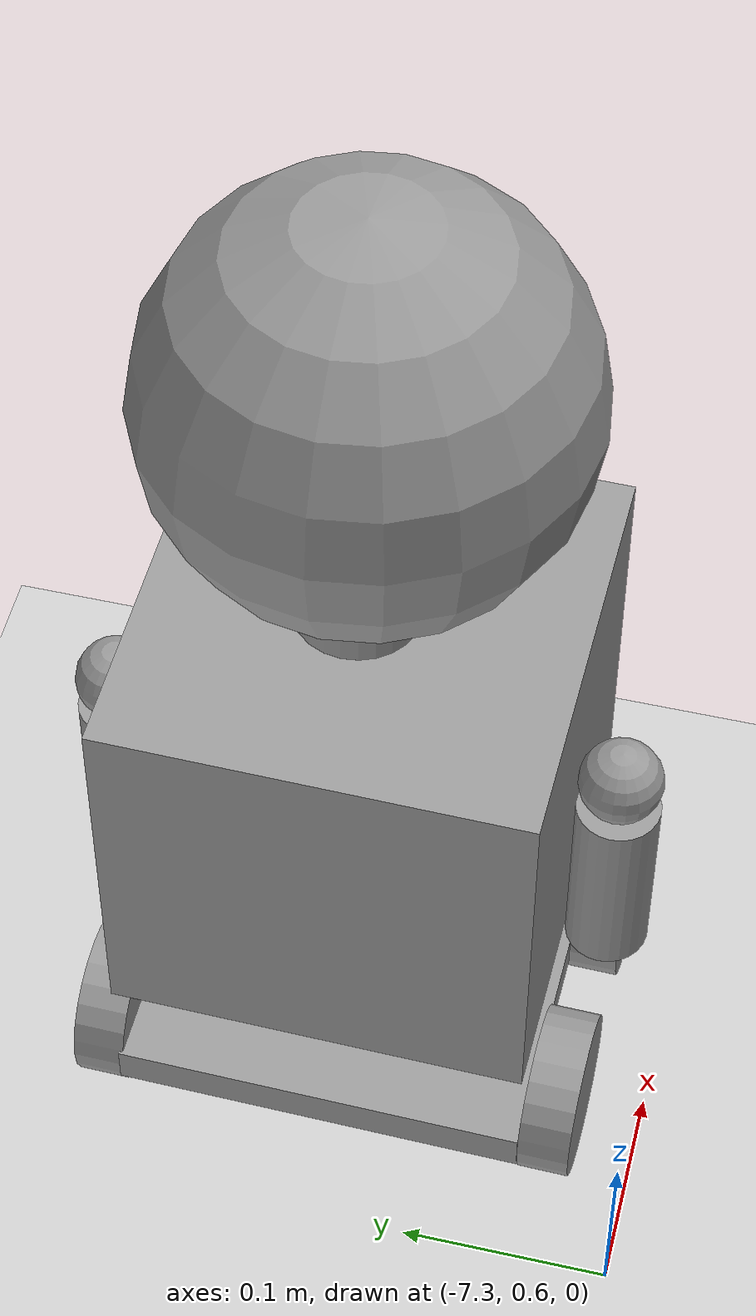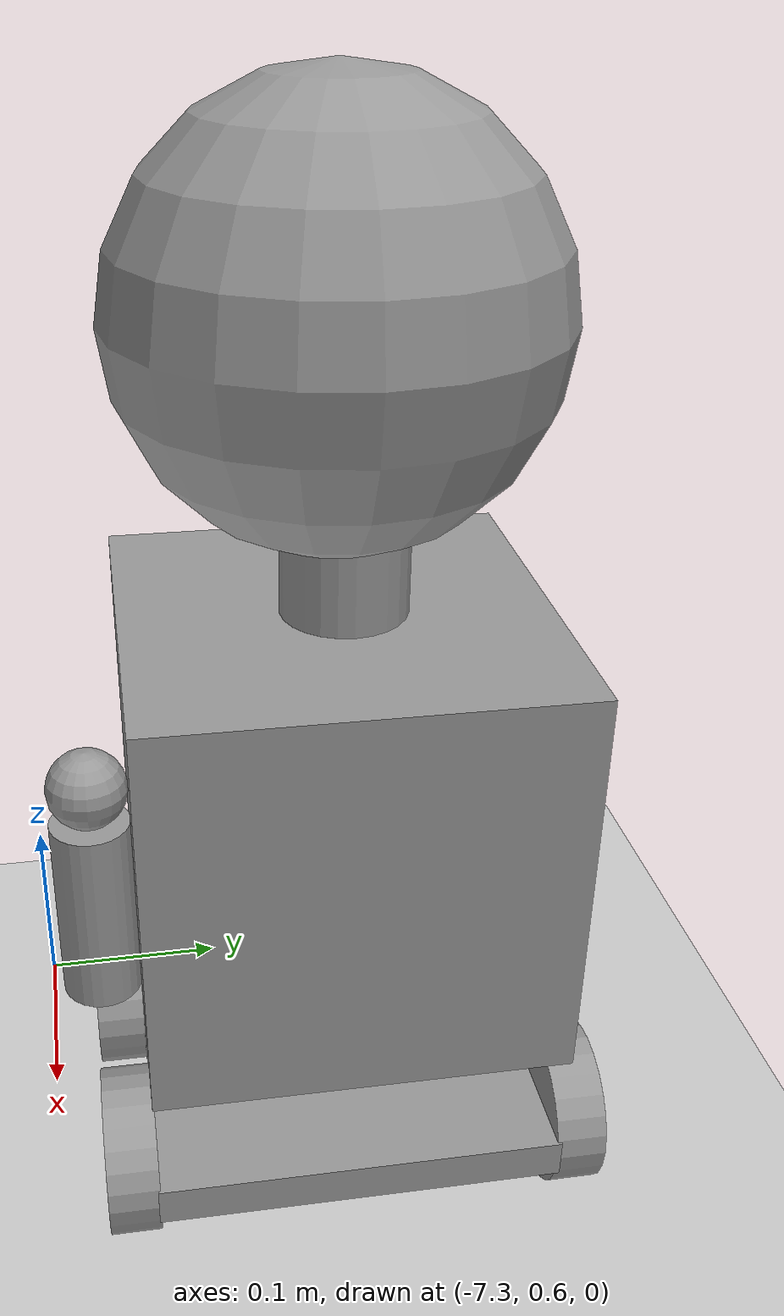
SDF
<sdf version="1.6">
 <world name="default">
  <model name="ground_plane">
   <static>1</static>
   <link name="link">
    <collision name="collision">
     <geometry><plane><normal>0 0 1</normal><size>100 100</size></plane></geometry>
     <surface><friction><ode><mu>100</mu><mu2>50</mu2></ode></friction></surface>
    </collision>
    <visual name="visual">
     <cast_shadows>0</cast_shadows>
     <geometry><plane><normal>0 0 1</normal><size>100 100</size></plane></geometry>
     <material>
      <script><uri>file://media/materials/scripts/gazebo.material</uri><name>Gazebo/Grey</name></script>
     </material>
    </visual>
   </link>
  </model>
  <model name="RoboX_0">
   <link name="link_0">
    <pose>2 1.99948 0.422775 0 -0 0</pose>
    <inertial>
     <mass>1</mass>
     <inertia>
      <ixx>0.166667</ixx>
      <ixy>0</ixy>
      <ixz>0</ixz>
      <iyy>0.166667</iyy>
      <iyz>0</iyz>
      <izz>0.166667</izz>
     </inertia>
    </inertial>
    <visual name="visual">
     <geometry><box><size>0.2 0.2 0.02</size></box></geometry>
     <material>
      <lighting>1</lighting>
      <script><uri>file://media/materials/scripts/gazebo.material</uri><name>Gazebo/Grey</name></script>
      <shader type="pixel"><normal_map>__default__</normal_map></shader>
      <ambient>0.3 0.3 0.3 1</ambient>
      <diffuse>0.7 0.7 0.7 1</diffuse>
      <specular>0.01 0.01 0.01 1</specular>
      <emissive>0 0 0 1</emissive>
     </material>
    </visual>
    <collision name="collision">
     <geometry><box><size>0.2 0.2 0.02</size></box></geometry>
     <surface>
      <friction>
       <ode><mu>1</mu><mu2>1</mu2><fdir1>0 0 0</fdir1><slip1>0</slip1><slip2>0</slip2></ode>
       <torsional>
        <coefficient>1</coefficient>
        <patch_radius>0</patch_radius>
        <surface_radius>0</surface_radius>
        <use_patch_radius>1</use_patch_radius>
        <ode><slip>0</slip></ode>
       </torsional>
      </friction>
      <bounce><restitution_coefficient>0</restitution_coefficient><threshold>1e+06</threshold></bounce>
      <contact>
       <collide_without_contact>0</collide_without_contact>
       <collide_without_contact_bitmask>1</collide_without_contact_bitmask>
       <collide_bitmask>1</collide_bitmask>
       <ode>
        <soft_cfm>0</soft_cfm>
        <soft_erp>0.2</soft_erp>
        <kp>1e+13</kp>
        <kd>1</kd>
        <max_vel>0.01</max_vel>
        <min_depth>0</min_depth>
       </ode>
       <bullet>
        <split_impulse>1</split_impulse>
        <split_impulse_penetration_threshold>-0.01</split_impulse_penetration_threshold>
        <soft_cfm>0</soft_cfm>
        <soft_erp>0.2</soft_erp>
        <kp>1e+13</kp>
        <kd>1</kd>
       </bullet>
      </contact>
     </surface>
    </collision>
   </link>
   <link name="link_1">
    <pose>1.94 1.88697 0.422775 1.5707 -0 0</pose>
    <inertial>
     <mass>1</mass>
     <inertia><ixx>0.145833</ixx><ixy>0</ixy><ixz>0</ixz><iyy>0.145833</iyy><iyz>0</iyz><izz>0.125</izz></inertia>
    </inertial>
    <visual name="visual">
     <geometry><cylinder><radius>0.04</radius><length>0.025</length></cylinder></geometry>
     <material>
      <lighting>1</lighting>
      <script><uri>file://media/materials/scripts/gazebo.material</uri><name>Gazebo/Grey</name></script>
      <shader type="pixel"><normal_map>__default__</normal_map></shader>
      <ambient>0.3 0.3 0.3 1</ambient>
      <diffuse>0.7 0.7 0.7 1</diffuse>
      <specular>0.01 0.01 0.01 1</specular>
      <emissive>0 0 0 1</emissive>
     </material>
    </visual>
    <collision name="collision">
     <geometry><cylinder><radius>0.04</radius><length>0.025</length></cylinder></geometry>
     <surface>
      <friction>
       <ode><mu>1</mu><mu2>1</mu2><fdir1>0 0 0</fdir1><slip1>0</slip1><slip2>0</slip2></ode>
       <torsional>
        <coefficient>1</coefficient>
        <patch_radius>0</patch_radius>
        <surface_radius>0</surface_radius>
        <use_patch_radius>1</use_patch_radius>
        <ode><slip>0</slip></ode>
       </torsional>
      </friction>
      <bounce><restitution_coefficient>0</restitution_coefficient><threshold>1e+06</threshold></bounce>
      <contact>
       <collide_without_contact>0</collide_without_contact>
       <collide_without_contact_bitmask>1</collide_without_contact_bitmask>
       <collide_bitmask>1</collide_bitmask>
       <ode>
        <soft_cfm>0</soft_cfm>
        <soft_erp>0.2</soft_erp>
        <kp>1e+13</kp>
        <kd>1</kd>
        <max_vel>0.01</max_vel>
        <min_depth>0</min_depth>
       </ode>
       <bullet>
        <split_impulse>1</split_impulse>
        <split_impulse_penetration_threshold>-0.01</split_impulse_penetration_threshold>
        <soft_cfm>0</soft_cfm>
        <soft_erp>0.2</soft_erp>
        <kp>1e+13</kp>
        <kd>1</kd>
       </bullet>
      </contact>
     </surface>
    </collision>
   </link>
   <link name="link_1_clone">
    <pose>1.94 2.11011 0.422775 1.5707 -0 0</pose>
    <inertial>
     <mass>1</mass>
     <inertia><ixx>0.145833</ixx><ixy>0</ixy><ixz>0</ixz><iyy>0.145833</iyy><iyz>0</iyz><izz>0.125</izz></inertia>
    </inertial>
    <visual name="visual">
     <geometry><cylinder><radius>0.04</radius><length>0.025</length></cylinder></geometry>
     <material>
      <lighting>1</lighting>
      <script><uri>file://media/materials/scripts/gazebo.material</uri><name>Gazebo/Grey</name></script>
      <shader type="pixel"><normal_map>__default__</normal_map></shader>
      <ambient>0.3 0.3 0.3 1</ambient>
      <diffuse>0.7 0.7 0.7 1</diffuse>
      <specular>0.01 0.01 0.01 1</specular>
      <emissive>0 0 0 1</emissive>
     </material>
    </visual>
    <collision name="collision">
     <geometry><cylinder><radius>0.04</radius><length>0.025</length></cylinder></geometry>
     <surface>
      <friction>
       <ode><mu>1</mu><mu2>1</mu2><fdir1>0 0 0</fdir1><slip1>0</slip1><slip2>0</slip2></ode>
       <torsional>
        <coefficient>1</coefficient>
        <patch_radius>0</patch_radius>
        <surface_radius>0</surface_radius>
        <use_patch_radius>1</use_patch_radius>
        <ode><slip>0</slip></ode>
       </torsional>
      </friction>
      <bounce><restitution_coefficient>0</restitution_coefficient><threshold>1e+06</threshold></bounce>
      <contact>
       <collide_without_contact>0</collide_without_contact>
       <collide_without_contact_bitmask>1</collide_without_contact_bitmask>
       <collide_bitmask>1</collide_bitmask>
       <ode>
        <soft_cfm>0</soft_cfm>
        <soft_erp>0.2</soft_erp>
        <kp>1e+13</kp>
        <kd>1</kd>
        <max_vel>0.01</max_vel>
        <min_depth>0</min_depth>
       </ode>
       <bullet>
        <split_impulse>1</split_impulse>
        <split_impulse_penetration_threshold>-0.01</split_impulse_penetration_threshold>
        <soft_cfm>0</soft_cfm>
        <soft_erp>0.2</soft_erp>
        <kp>1e+13</kp>
        <kd>1</kd>
       </bullet>
      </contact>
     </surface>
    </collision>
   </link>
   <link name="link_1_clone_0">
    <pose>2.06 1.88807 0.422775 1.5707 -0 0</pose>
    <inertial>
     <mass>1</mass>
     <inertia><ixx>0.145833</ixx><ixy>0</ixy><ixz>0</ixz><iyy>0.145833</iyy><iyz>0</iyz><izz>0.125</izz></inertia>
    </inertial>
    <visual name="visual">
     <geometry><cylinder><radius>0.04</radius><length>0.025</length></cylinder></geometry>
     <material>
      <lighting>1</lighting>
      <script><uri>file://media/materials/scripts/gazebo.material</uri><name>Gazebo/Grey</name></script>
      <shader type="pixel"><normal_map>__default__</normal_map></shader>
      <ambient>0.3 0.3 0.3 1</ambient>
      <diffuse>0.7 0.7 0.7 1</diffuse>
      <specular>0.01 0.01 0.01 1</specular>
      <emissive>0 0 0 1</emissive>
     </material>
    </visual>
    <collision name="collision">
     <geometry><cylinder><radius>0.04</radius><length>0.025</length></cylinder></geometry>
     <surface>
      <friction>
       <ode><mu>1</mu><mu2>1</mu2><fdir1>0 0 0</fdir1><slip1>0</slip1><slip2>0</slip2></ode>
       <torsional>
        <coefficient>1</coefficient>
        <patch_radius>0</patch_radius>
        <surface_radius>0</surface_radius>
        <use_patch_radius>1</use_patch_radius>
        <ode><slip>0</slip></ode>
       </torsional>
      </friction>
      <bounce><restitution_coefficient>0</restitution_coefficient><threshold>1e+06</threshold></bounce>
      <contact>
       <collide_without_contact>0</collide_without_contact>
       <collide_without_contact_bitmask>1</collide_without_contact_bitmask>
       <collide_bitmask>1</collide_bitmask>
       <ode>
        <soft_cfm>0</soft_cfm>
        <soft_erp>0.2</soft_erp>
        <kp>1e+13</kp>
        <kd>1</kd>
        <max_vel>0.01</max_vel>
        <min_depth>0</min_depth>
       </ode>
       <bullet>
        <split_impulse>1</split_impulse>
        <split_impulse_penetration_threshold>-0.01</split_impulse_penetration_threshold>
        <soft_cfm>0</soft_cfm>
        <soft_erp>0.2</soft_erp>
        <kp>1e+13</kp>
        <kd>1</kd>
       </bullet>
      </contact>
     </surface>
    </collision>
   </link>
   <link name="link_1_clone_1">
    <pose>2.06 2.11011 0.422775 1.5707 -0 0</pose>
    <inertial>
     <mass>1</mass>
     <inertia><ixx>0.145833</ixx><ixy>0</ixy><ixz>0</ixz><iyy>0.145833</iyy><iyz>0</iyz><izz>0.125</izz></inertia>
    </inertial>
    <visual name="visual">
     <geometry><cylinder><radius>0.04</radius><length>0.025</length></cylinder></geometry>
     <material>
      <lighting>1</lighting>
      <script><uri>file://media/materials/scripts/gazebo.material</uri><name>Gazebo/Grey</name></script>
      <shader type="pixel"><normal_map>__default__</normal_map></shader>
      <ambient>0.3 0.3 0.3 1</ambient>
      <diffuse>0.7 0.7 0.7 1</diffuse>
      <specular>0.01 0.01 0.01 1</specular>
      <emissive>0 0 0 1</emissive>
     </material>
    </visual>
    <collision name="collision">
     <geometry><cylinder><radius>0.04</radius><length>0.025</length></cylinder></geometry>
     <surface>
      <friction>
       <ode><mu>1</mu><mu2>1</mu2><fdir1>0 0 0</fdir1><slip1>0</slip1><slip2>0</slip2></ode>
       <torsional>
        <coefficient>1</coefficient>
        <patch_radius>0</patch_radius>
        <surface_radius>0</surface_radius>
        <use_patch_radius>1</use_patch_radius>
        <ode><slip>0</slip></ode>
       </torsional>
      </friction>
      <bounce><restitution_coefficient>0</restitution_coefficient><threshold>1e+06</threshold></bounce>
      <contact>
       <collide_without_contact>0</collide_without_contact>
       <collide_without_contact_bitmask>1</collide_without_contact_bitmask>
       <collide_bitmask>1</collide_bitmask>
       <ode>
        <soft_cfm>0</soft_cfm>
        <soft_erp>0.2</soft_erp>
        <kp>1e+13</kp>
        <kd>1</kd>
        <max_vel>0.01</max_vel>
        <min_depth>0</min_depth>
       </ode>
       <bullet>
        <split_impulse>1</split_impulse>
        <split_impulse_penetration_threshold>-0.01</split_impulse_penetration_threshold>
        <soft_cfm>0</soft_cfm>
        <soft_erp>0.2</soft_erp>
        <kp>1e+13</kp>
        <kd>1</kd>
       </bullet>
      </contact>
     </surface>
    </collision>
   </link>
   <link name="link_2">
    <pose>2 1.94895 0.472775 0 -0 0</pose>
    <inertial>
     <mass>1</mass>
     <inertia><ixx>0.145833</ixx><ixy>0</ixy><ixz>0</ixz><iyy>0.145833</iyy><iyz>0</iyz><izz>0.125</izz></inertia>
    </inertial>
    <visual name="visual">
     <geometry><cylinder><radius>0.03</radius><length>0.1</length></cylinder></geometry>
     <material>
      <lighting>1</lighting>
      <script><uri>file://media/materials/scripts/gazebo.material</uri><name>Gazebo/Grey</name></script>
      <shader type="pixel"><normal_map>__default__</normal_map></shader>
      <ambient>0.3 0.3 0.3 1</ambient>
      <diffuse>0.7 0.7 0.7 1</diffuse>
      <specular>0.01 0.01 0.01 1</specular>
      <emissive>0 0 0 1</emissive>
     </material>
    </visual>
    <collision name="collision">
     <geometry><cylinder><radius>0.03</radius><length>0.1</length></cylinder></geometry>
     <surface>
      <friction>
       <ode><mu>1</mu><mu2>1</mu2><fdir1>0 0 0</fdir1><slip1>0</slip1><slip2>0</slip2></ode>
       <torsional>
        <coefficient>1</coefficient>
        <patch_radius>0</patch_radius>
        <surface_radius>0</surface_radius>
        <use_patch_radius>1</use_patch_radius>
        <ode><slip>0</slip></ode>
       </torsional>
      </friction>
      <bounce><restitution_coefficient>0</restitution_coefficient><threshold>1e+06</threshold></bounce>
      <contact>
       <collide_without_contact>0</collide_without_contact>
       <collide_without_contact_bitmask>1</collide_without_contact_bitmask>
       <collide_bitmask>1</collide_bitmask>
       <ode>
        <soft_cfm>0</soft_cfm>
        <soft_erp>0.2</soft_erp>
        <kp>1e+13</kp>
        <kd>1</kd>
        <max_vel>0.01</max_vel>
        <min_depth>0</min_depth>
       </ode>
       <bullet>
        <split_impulse>1</split_impulse>
        <split_impulse_penetration_threshold>-0.01</split_impulse_penetration_threshold>
        <soft_cfm>0</soft_cfm>
        <soft_erp>0.2</soft_erp>
        <kp>1e+13</kp>
        <kd>1</kd>
       </bullet>
      </contact>
     </surface>
    </collision>
   </link>
   <link name="link_2_clone">
    <pose>2 2.04895 0.472775 0 -0 0</pose>
    <inertial>
     <mass>1</mass>
     <inertia><ixx>0.145833</ixx><ixy>0</ixy><ixz>0</ixz><iyy>0.145833</iyy><iyz>0</iyz><izz>0.125</izz></inertia>
    </inertial>
    <visual name="visual">
     <geometry><cylinder><radius>0.03</radius><length>0.1</length></cylinder></geometry>
     <material>
      <lighting>1</lighting>
      <script><uri>file://media/materials/scripts/gazebo.material</uri><name>Gazebo/Grey</name></script>
      <shader type="pixel"><normal_map>__default__</normal_map></shader>
      <ambient>0.3 0.3 0.3 1</ambient>
      <diffuse>0.7 0.7 0.7 1</diffuse>
      <specular>0.01 0.01 0.01 1</specular>
      <emissive>0 0 0 1</emissive>
     </material>
    </visual>
    <collision name="collision">
     <geometry><cylinder><radius>0.03</radius><length>0.1</length></cylinder></geometry>
     <surface>
      <friction>
       <ode><mu>1</mu><mu2>1</mu2><fdir1>0 0 0</fdir1><slip1>0</slip1><slip2>0</slip2></ode>
       <torsional>
        <coefficient>1</coefficient>
        <patch_radius>0</patch_radius>
        <surface_radius>0</surface_radius>
        <use_patch_radius>1</use_patch_radius>
        <ode><slip>0</slip></ode>
       </torsional>
      </friction>
      <bounce><restitution_coefficient>0</restitution_coefficient><threshold>1e+06</threshold></bounce>
      <contact>
       <collide_without_contact>0</collide_without_contact>
       <collide_without_contact_bitmask>1</collide_without_contact_bitmask>
       <collide_bitmask>1</collide_bitmask>
       <ode>
        <soft_cfm>0</soft_cfm>
        <soft_erp>0.2</soft_erp>
        <kp>1e+13</kp>
        <kd>1</kd>
        <max_vel>0.01</max_vel>
        <min_depth>0</min_depth>
       </ode>
       <bullet>
        <split_impulse>1</split_impulse>
        <split_impulse_penetration_threshold>-0.01</split_impulse_penetration_threshold>
        <soft_cfm>0</soft_cfm>
        <soft_erp>0.2</soft_erp>
        <kp>1e+13</kp>
        <kd>1</kd>
       </bullet>
      </contact>
     </surface>
    </collision>
   </link>
   <link name="link_2_clone_clone">
    <pose>2 2.00366 0.721525 0 -0 0</pose>
    <inertial>
     <mass>1</mass>
     <inertia><ixx>0.145833</ixx><ixy>0</ixy><ixz>0</ixz><iyy>0.145833</iyy><iyz>0</iyz><izz>0.125</izz></inertia>
    </inertial>
    <visual name="visual">
     <geometry><cylinder><radius>0.03</radius><length>0.1</length></cylinder></geometry>
     <material>
      <lighting>1</lighting>
      <script><uri>file://media/materials/scripts/gazebo.material</uri><name>Gazebo/Grey</name></script>
      <shader type="pixel"><normal_map>__default__</normal_map></shader>
      <ambient>0.3 0.3 0.3 1</ambient>
      <diffuse>0.7 0.7 0.7 1</diffuse>
      <specular>0.01 0.01 0.01 1</specular>
      <emissive>0 0 0 1</emissive>
     </material>
    </visual>
    <collision name="collision">
     <geometry><cylinder><radius>0.03</radius><length>0.1</length></cylinder></geometry>
     <surface>
      <friction>
       <ode><mu>1</mu><mu2>1</mu2><fdir1>0 0 0</fdir1><slip1>0</slip1><slip2>0</slip2></ode>
       <torsional>
        <coefficient>1</coefficient>
        <patch_radius>0</patch_radius>
        <surface_radius>0</surface_radius>
        <use_patch_radius>1</use_patch_radius>
        <ode><slip>0</slip></ode>
       </torsional>
      </friction>
      <bounce><restitution_coefficient>0</restitution_coefficient><threshold>1e+06</threshold></bounce>
      <contact>
       <collide_without_contact>0</collide_without_contact>
       <collide_without_contact_bitmask>1</collide_without_contact_bitmask>
       <collide_bitmask>1</collide_bitmask>
       <ode>
        <soft_cfm>0</soft_cfm>
        <soft_erp>0.2</soft_erp>
        <kp>1e+13</kp>
        <kd>1</kd>
        <max_vel>0.01</max_vel>
        <min_depth>0</min_depth>
       </ode>
       <bullet>
        <split_impulse>1</split_impulse>
        <split_impulse_penetration_threshold>-0.01</split_impulse_penetration_threshold>
        <soft_cfm>0</soft_cfm>
        <soft_erp>0.2</soft_erp>
        <kp>1e+13</kp>
        <kd>1</kd>
       </bullet>
      </contact>
     </surface>
    </collision>
   </link>
   <link name="link_3">
    <pose>2 1.99948 0.587061 0 -0 0</pose>
    <inertial>
     <mass>1</mass>
     <inertia>
      <ixx>0.166667</ixx>
      <ixy>0</ixy>
      <ixz>0</ixz>
      <iyy>0.166667</iyy>
      <iyz>0</iyz>
      <izz>0.166667</izz>
     </inertia>
    </inertial>
    <visual name="visual">
     <geometry><box><size>0.2 0.2 0.2</size></box></geometry>
     <material>
      <lighting>1</lighting>
      <script><uri>file://media/materials/scripts/gazebo.material</uri><name>Gazebo/Grey</name></script>
      <shader type="pixel"><normal_map>__default__</normal_map></shader>
      <ambient>0.3 0.3 0.3 1</ambient>
      <diffuse>0.7 0.7 0.7 1</diffuse>
      <specular>0.01 0.01 0.01 1</specular>
      <emissive>0 0 0 1</emissive>
     </material>
    </visual>
    <collision name="collision">
     <geometry><box><size>0.2 0.2 0.2</size></box></geometry>
     <surface>
      <friction>
       <ode><mu>1</mu><mu2>1</mu2><fdir1>0 0 0</fdir1><slip1>0</slip1><slip2>0</slip2></ode>
       <torsional>
        <coefficient>1</coefficient>
        <patch_radius>0</patch_radius>
        <surface_radius>0</surface_radius>
        <use_patch_radius>1</use_patch_radius>
        <ode><slip>0</slip></ode>
       </torsional>
      </friction>
      <bounce><restitution_coefficient>0</restitution_coefficient><threshold>1e+06</threshold></bounce>
      <contact>
       <collide_without_contact>0</collide_without_contact>
       <collide_without_contact_bitmask>1</collide_without_contact_bitmask>
       <collide_bitmask>1</collide_bitmask>
       <ode>
        <soft_cfm>0</soft_cfm>
        <soft_erp>0.2</soft_erp>
        <kp>1e+13</kp>
        <kd>1</kd>
        <max_vel>0.01</max_vel>
        <min_depth>0</min_depth>
       </ode>
       <bullet>
        <split_impulse>1</split_impulse>
        <split_impulse_penetration_threshold>-0.01</split_impulse_penetration_threshold>
        <soft_cfm>0</soft_cfm>
        <soft_erp>0.2</soft_erp>
        <kp>1e+13</kp>
        <kd>1</kd>
       </bullet>
      </contact>
     </surface>
    </collision>
   </link>
   <link name="link_4">
    <pose>2 1.99901 0.821525 0 -0 0</pose>
    <inertial>
     <mass>1</mass>
     <inertia><ixx>0.1</ixx><ixy>0</ixy><ixz>0</ixz><iyy>0.1</iyy><iyz>0</iyz><izz>0.1</izz></inertia>
    </inertial>
    <visual name="visual">
     <geometry><sphere><radius>0.1</radius></sphere></geometry>
     <material>
      <lighting>1</lighting>
      <script><uri>file://media/materials/scripts/gazebo.material</uri><name>Gazebo/Grey</name></script>
      <shader type="pixel"><normal_map>__default__</normal_map></shader>
      <ambient>0.3 0.3 0.3 1</ambient>
      <diffuse>0.7 0.7 0.7 1</diffuse>
      <specular>0.01 0.01 0.01 1</specular>
      <emissive>0 0 0 1</emissive>
     </material>
    </visual>
    <collision name="collision">
     <geometry><sphere><radius>0.1</radius></sphere></geometry>
     <surface>
      <friction>
       <ode><mu>1</mu><mu2>1</mu2><fdir1>0 0 0</fdir1><slip1>0</slip1><slip2>0</slip2></ode>
       <torsional>
        <coefficient>1</coefficient>
        <patch_radius>0</patch_radius>
        <surface_radius>0</surface_radius>
        <use_patch_radius>1</use_patch_radius>
        <ode><slip>0</slip></ode>
       </torsional>
      </friction>
      <bounce><restitution_coefficient>0</restitution_coefficient><threshold>1e+06</threshold></bounce>
      <contact>
       <collide_without_contact>0</collide_without_contact>
       <collide_without_contact_bitmask>1</collide_without_contact_bitmask>
       <collide_bitmask>1</collide_bitmask>
       <ode>
        <soft_cfm>0</soft_cfm>
        <soft_erp>0.2</soft_erp>
        <kp>1e+13</kp>
        <kd>1</kd>
        <max_vel>0.01</max_vel>
        <min_depth>0</min_depth>
       </ode>
       <bullet>
        <split_impulse>1</split_impulse>
        <split_impulse_penetration_threshold>-0.01</split_impulse_penetration_threshold>
        <soft_cfm>0</soft_cfm>
        <soft_erp>0.2</soft_erp>
        <kp>1e+13</kp>
        <kd>1</kd>
       </bullet>
      </contact>
     </surface>
    </collision>
   </link>
   <link name="link_5">
    <pose>2 2.11994 0.600204 0 -0 0</pose>
    <inertial>
     <mass>1</mass>
     <inertia><ixx>0.1</ixx><ixy>0</ixy><ixz>0</ixz><iyy>0.1</iyy><iyz>0</iyz><izz>0.1</izz></inertia>
    </inertial>
    <visual name="visual">
     <geometry><sphere><radius>0.02</radius></sphere></geometry>
     <material>
      <lighting>1</lighting>
      <script><uri>file://media/materials/scripts/gazebo.material</uri><name>Gazebo/Grey</name></script>
      <shader type="pixel"><normal_map>__default__</normal_map></shader>
      <ambient>0.3 0.3 0.3 1</ambient>
      <diffuse>0.7 0.7 0.7 1</diffuse>
      <specular>0.01 0.01 0.01 1</specular>
      <emissive>0 0 0 1</emissive>
     </material>
    </visual>
    <collision name="collision">
     <geometry><sphere><radius>0.02</radius></sphere></geometry>
     <surface>
      <friction>
       <ode><mu>1</mu><mu2>1</mu2><fdir1>0 0 0</fdir1><slip1>0</slip1><slip2>0</slip2></ode>
       <torsional>
        <coefficient>1</coefficient>
        <patch_radius>0</patch_radius>
        <surface_radius>0</surface_radius>
        <use_patch_radius>1</use_patch_radius>
        <ode><slip>0</slip></ode>
       </torsional>
      </friction>
      <bounce><restitution_coefficient>0</restitution_coefficient><threshold>1e+06</threshold></bounce>
      <contact>
       <collide_without_contact>0</collide_without_contact>
       <collide_without_contact_bitmask>1</collide_without_contact_bitmask>
       <collide_bitmask>1</collide_bitmask>
       <ode>
        <soft_cfm>0</soft_cfm>
        <soft_erp>0.2</soft_erp>
        <kp>1e+13</kp>
        <kd>1</kd>
        <max_vel>0.01</max_vel>
        <min_depth>0</min_depth>
       </ode>
       <bullet>
        <split_impulse>1</split_impulse>
        <split_impulse_penetration_threshold>-0.01</split_impulse_penetration_threshold>
        <soft_cfm>0</soft_cfm>
        <soft_erp>0.2</soft_erp>
        <kp>1e+13</kp>
        <kd>1</kd>
       </bullet>
      </contact>
     </surface>
    </collision>
   </link>
   <link name="link_5_clone">
    <pose>2 1.87994 0.600204 0 -0 0</pose>
    <inertial>
     <mass>1</mass>
     <inertia><ixx>0.1</ixx><ixy>0</ixy><ixz>0</ixz><iyy>0.1</iyy><iyz>0</iyz><izz>0.1</izz></inertia>
    </inertial>
    <visual name="visual">
     <geometry><sphere><radius>0.02</radius></sphere></geometry>
     <material>
      <lighting>1</lighting>
      <script><uri>file://media/materials/scripts/gazebo.material</uri><name>Gazebo/Grey</name></script>
      <shader type="pixel"><normal_map>__default__</normal_map></shader>
      <ambient>0.3 0.3 0.3 1</ambient>
      <diffuse>0.7 0.7 0.7 1</diffuse>
      <specular>0.01 0.01 0.01 1</specular>
      <emissive>0 0 0 1</emissive>
     </material>
    </visual>
    <collision name="collision">
     <geometry><sphere><radius>0.02</radius></sphere></geometry>
     <surface>
      <friction>
       <ode><mu>1</mu><mu2>1</mu2><fdir1>0 0 0</fdir1><slip1>0</slip1><slip2>0</slip2></ode>
       <torsional>
        <coefficient>1</coefficient>
        <patch_radius>0</patch_radius>
        <surface_radius>0</surface_radius>
        <use_patch_radius>1</use_patch_radius>
        <ode><slip>0</slip></ode>
       </torsional>
      </friction>
      <bounce><restitution_coefficient>0</restitution_coefficient><threshold>1e+06</threshold></bounce>
      <contact>
       <collide_without_contact>0</collide_without_contact>
       <collide_without_contact_bitmask>1</collide_without_contact_bitmask>
       <collide_bitmask>1</collide_bitmask>
       <ode>
        <soft_cfm>0</soft_cfm>
        <soft_erp>0.2</soft_erp>
        <kp>1e+13</kp>
        <kd>1</kd>
        <max_vel>0.01</max_vel>
        <min_depth>0</min_depth>
       </ode>
       <bullet>
        <split_impulse>1</split_impulse>
        <split_impulse_penetration_threshold>-0.01</split_impulse_penetration_threshold>
        <soft_cfm>0</soft_cfm>
        <soft_erp>0.2</soft_erp>
        <kp>1e+13</kp>
        <kd>1</kd>
       </bullet>
      </contact>
     </surface>
    </collision>
   </link>
   <link name="link_6">
    <pose>2 2.11994 0.531067 0 -0 0</pose>
    <inertial>
     <mass>1</mass>
     <inertia><ixx>0.145833</ixx><ixy>0</ixy><ixz>0</ixz><iyy>0.145833</iyy><iyz>0</iyz><izz>0.125</izz></inertia>
    </inertial>
    <visual name="visual">
     <geometry><cylinder><radius>0.02</radius><length>0.1</length></cylinder></geometry>
     <material>
      <lighting>1</lighting>
      <script><uri>file://media/materials/scripts/gazebo.material</uri><name>Gazebo/Grey</name></script>
      <shader type="pixel"><normal_map>__default__</normal_map></shader>
      <ambient>0.3 0.3 0.3 1</ambient>
      <diffuse>0.7 0.7 0.7 1</diffuse>
      <specular>0.01 0.01 0.01 1</specular>
      <emissive>0 0 0 1</emissive>
     </material>
    </visual>
    <collision name="collision">
     <geometry><cylinder><radius>0.02</radius><length>0.1</length></cylinder></geometry>
     <surface>
      <friction>
       <ode><mu>1</mu><mu2>1</mu2><fdir1>0 0 0</fdir1><slip1>0</slip1><slip2>0</slip2></ode>
       <torsional>
        <coefficient>1</coefficient>
        <patch_radius>0</patch_radius>
        <surface_radius>0</surface_radius>
        <use_patch_radius>1</use_patch_radius>
        <ode><slip>0</slip></ode>
       </torsional>
      </friction>
      <bounce><restitution_coefficient>0</restitution_coefficient><threshold>1e+06</threshold></bounce>
      <contact>
       <collide_without_contact>0</collide_without_contact>
       <collide_without_contact_bitmask>1</collide_without_contact_bitmask>
       <collide_bitmask>1</collide_bitmask>
       <ode>
        <soft_cfm>0</soft_cfm>
        <soft_erp>0.2</soft_erp>
        <kp>1e+13</kp>
        <kd>1</kd>
        <max_vel>0.01</max_vel>
        <min_depth>0</min_depth>
       </ode>
       <bullet>
        <split_impulse>1</split_impulse>
        <split_impulse_penetration_threshold>-0.01</split_impulse_penetration_threshold>
        <soft_cfm>0</soft_cfm>
        <soft_erp>0.2</soft_erp>
        <kp>1e+13</kp>
        <kd>1</kd>
       </bullet>
      </contact>
     </surface>
    </collision>
   </link>
   <link name="link_6_clone">
    <pose>2 1.87994 0.531067 0 -0 0</pose>
    <inertial>
     <mass>1</mass>
     <inertia><ixx>0.145833</ixx><ixy>0</ixy><ixz>0</ixz><iyy>0.145833</iyy><iyz>0</iyz><izz>0.125</izz></inertia>
    </inertial>
    <visual name="visual">
     <geometry><cylinder><radius>0.02</radius><length>0.1</length></cylinder></geometry>
     <material>
      <lighting>1</lighting>
      <script><uri>file://media/materials/scripts/gazebo.material</uri><name>Gazebo/Grey</name></script>
      <shader type="pixel"><normal_map>__default__</normal_map></shader>
      <ambient>0.3 0.3 0.3 1</ambient>
      <diffuse>0.7 0.7 0.7 1</diffuse>
      <specular>0.01 0.01 0.01 1</specular>
      <emissive>0 0 0 1</emissive>
     </material>
    </visual>
    <collision name="collision">
     <geometry><cylinder><radius>0.02</radius><length>0.1</length></cylinder></geometry>
     <surface>
      <friction>
       <ode><mu>1</mu><mu2>1</mu2><fdir1>0 0 0</fdir1><slip1>0</slip1><slip2>0</slip2></ode>
       <torsional>
        <coefficient>1</coefficient>
        <patch_radius>0</patch_radius>
        <surface_radius>0</surface_radius>
        <use_patch_radius>1</use_patch_radius>
        <ode><slip>0</slip></ode>
       </torsional>
      </friction>
      <bounce><restitution_coefficient>0</restitution_coefficient><threshold>1e+06</threshold></bounce>
      <contact>
       <collide_without_contact>0</collide_without_contact>
       <collide_without_contact_bitmask>1</collide_without_contact_bitmask>
       <collide_bitmask>1</collide_bitmask>
       <ode>
        <soft_cfm>0</soft_cfm>
        <soft_erp>0.2</soft_erp>
        <kp>1e+13</kp>
        <kd>1</kd>
        <max_vel>0.01</max_vel>
        <min_depth>0</min_depth>
       </ode>
       <bullet>
        <split_impulse>1</split_impulse>
        <split_impulse_penetration_threshold>-0.01</split_impulse_penetration_threshold>
        <soft_cfm>0</soft_cfm>
        <soft_erp>0.2</soft_erp>
        <kp>1e+13</kp>
        <kd>1</kd>
       </bullet>
      </contact>
     </surface>
    </collision>
   </link>
   <joint name="link_wheel1" type="revolute">
    <parent>link_0</parent>
    <child>link_1</child>
    <axis>
     <xyz>0 0 1</xyz>
     <use_parent_model_frame>0</use_parent_model_frame>
     <limit>
      <lower>-1.79769e+308</lower>
      <upper>1.79769e+308</upper>
      <effort>-1</effort>
      <velocity>-1</velocity>
     </limit>
     <dynamics>
      <spring_reference>0</spring_reference>
      <spring_stiffness>0</spring_stiffness>
      <damping>0</damping>
      <friction>0</friction>
     </dynamics>
    </axis>
    <physics>
     <ode><limit><cfm>0</cfm><erp>0.2</erp></limit><suspension><cfm>0</cfm><erp>0.2</erp></suspension></ode>
    </physics>
   </joint>
   <joint name="link_wheel2" type="revolute">
    <parent>link_0</parent>
    <child>link_1_clone</child>
    <axis>
     <xyz>0 0 1</xyz>
     <use_parent_model_frame>0</use_parent_model_frame>
     <limit>
      <lower>-1.79769e+308</lower>
      <upper>1.79769e+308</upper>
      <effort>-1</effort>
      <velocity>-1</velocity>
     </limit>
     <dynamics>
      <spring_reference>0</spring_reference>
      <spring_stiffness>0</spring_stiffness>
      <damping>0</damping>
      <friction>0</friction>
     </dynamics>
    </axis>
    <physics>
     <ode><limit><cfm>0</cfm><erp>0.2</erp></limit><suspension><cfm>0</cfm><erp>0.2</erp></suspension></ode>
    </physics>
   </joint>
   <joint name="link_wheel3" type="revolute">
    <parent>link_0</parent>
    <child>link_1_clone_0</child>
    <axis>
     <xyz>0 0 1</xyz>
     <use_parent_model_frame>0</use_parent_model_frame>
     <limit>
      <lower>-1.79769e+308</lower>
      <upper>1.79769e+308</upper>
      <effort>-1</effort>
      <velocity>-1</velocity>
     </limit>
     <dynamics>
      <spring_reference>0</spring_reference>
      <spring_stiffness>0</spring_stiffness>
      <damping>0</damping>
      <friction>0</friction>
     </dynamics>
    </axis>
    <physics>
     <ode><limit><cfm>0</cfm><erp>0.2</erp></limit><suspension><cfm>0</cfm><erp>0.2</erp></suspension></ode>
    </physics>
   </joint>
   <joint name="link_wheel4" type="revolute">
    <parent>link_0</parent>
    <child>link_1_clone_1</child>
    <axis>
     <xyz>0 0 1</xyz>
     <use_parent_model_frame>0</use_parent_model_frame>
     <limit>
      <lower>-1.79769e+308</lower>
      <upper>1.79769e+308</upper>
      <effort>-1</effort>
      <velocity>-1</velocity>
     </limit>
     <dynamics>
      <spring_reference>0</spring_reference>
      <spring_stiffness>0</spring_stiffness>
      <damping>0</damping>
      <friction>0</friction>
     </dynamics>
    </axis>
    <physics>
     <ode><limit><cfm>0</cfm><erp>0.2</erp></limit><suspension><cfm>0</cfm><erp>0.2</erp></suspension></ode>
    </physics>
   </joint>
   <joint name="link_leg_R" type="fixed">
    <parent>link_2</parent>
    <child>link_0</child>
    <physics>
     <ode><limit><cfm>0</cfm><erp>0.2</erp></limit><suspension><cfm>0</cfm><erp>0.2</erp></suspension></ode>
    </physics>
   </joint>
   <joint name="link_leg_L" type="fixed">
    <parent>link_2_clone</parent>
    <child>link_0</child>
    <physics>
     <ode><limit><cfm>0</cfm><erp>0.2</erp></limit><suspension><cfm>0</cfm><erp>0.2</erp></suspension></ode>
    </physics>
   </joint>
   <joint name="link_body_leg_L" type="fixed">
    <parent>link_3</parent>
    <child>link_2_clone</child>
    <physics>
     <ode><limit><cfm>0</cfm><erp>0.2</erp></limit><suspension><cfm>0</cfm><erp>0.2</erp></suspension></ode>
    </physics>
   </joint>
   <joint name="link_body_neck" type="fixed">
    <parent>link_3</parent>
    <child>link_2_clone_clone</child>
    <physics>
     <ode><limit><cfm>0</cfm><erp>0.2</erp></limit><suspension><cfm>0</cfm><erp>0.2</erp></suspension></ode>
    </physics>
   </joint>
   <joint name="link_body_L.arm" type="fixed">
    <parent>link_3</parent>
    <child>link_5</child>
    <physics>
     <ode><limit><cfm>0</cfm><erp>0.2</erp></limit><suspension><cfm>0</cfm><erp>0.2</erp></suspension></ode>
    </physics>
   </joint>
   <joint name="link_body_R.arm" type="fixed">
    <parent>link_3</parent>
    <child>link_5_clone</child>
    <physics>
     <ode><limit><cfm>0</cfm><erp>0.2</erp></limit><suspension><cfm>0</cfm><erp>0.2</erp></suspension></ode>
    </physics>
   </joint>
   <joint name="link_body_leg_R" type="fixed">
    <parent>link_3</parent>
    <child>link_2</child>
    <physics>
     <ode><limit><cfm>0</cfm><erp>0.2</erp></limit><suspension><cfm>0</cfm><erp>0.2</erp></suspension></ode>
    </physics>
   </joint>
   <joint name="link_head_neck" type="fixed">
    <parent>link_4</parent>
    <child>link_2_clone_clone</child>
    <physics>
     <ode><limit><cfm>0</cfm><erp>0.2</erp></limit><suspension><cfm>0</cfm><erp>0.2</erp></suspension></ode>
    </physics>
   </joint>
   <joint name="link_L_arm" type="prismatic">
    <parent>link_5</parent>
    <child>link_6</child>
    <axis>
     <xyz>0 1 0</xyz>
     <use_parent_model_frame>0</use_parent_model_frame>
     <limit>
      <lower>-1.79769e+308</lower>
      <upper>1.79769e+308</upper>
      <effort>-1</effort>
      <velocity>-1</velocity>
     </limit>
     <dynamics>
      <spring_reference>0</spring_reference>
      <spring_stiffness>0</spring_stiffness>
      <damping>0</damping>
      <friction>0</friction>
     </dynamics>
    </axis>
    <physics>
     <ode><limit><cfm>0</cfm><erp>0.2</erp></limit><suspension><cfm>0</cfm><erp>0.2</erp></suspension></ode>
    </physics>
   </joint>
   <joint name="link_R_arm" type="prismatic">
    <parent>link_5_clone</parent>
    <child>link_6_clone</child>
    <axis>
     <xyz>0 1 0</xyz>
     <use_parent_model_frame>0</use_parent_model_frame>
     <limit>
      <lower>-1.79769e+308</lower>
      <upper>1.79769e+308</upper>
      <effort>-1</effort>
      <velocity>-1</velocity>
     </limit>
     <dynamics>
      <spring_reference>0</spring_reference>
      <spring_stiffness>0</spring_stiffness>
      <damping>0</damping>
      <friction>0</friction>
     </dynamics>
    </axis>
    <physics>
     <ode><limit><cfm>0</cfm><erp>0.2</erp></limit><suspension><cfm>0</cfm><erp>0.2</erp></suspension></ode>
    </physics>
   </joint>
   <static>0</static>
   <pose>-9.19295 -1.2204 -0.383129 0.000137 -4.7e-05 -0.01394</pose>
  </model>
 </world>
</sdf>
